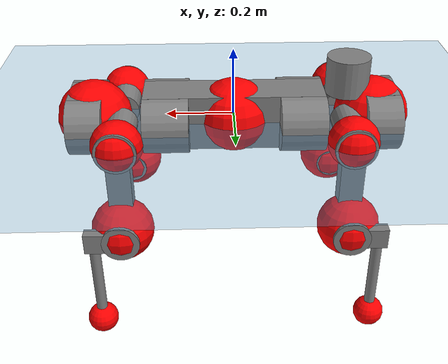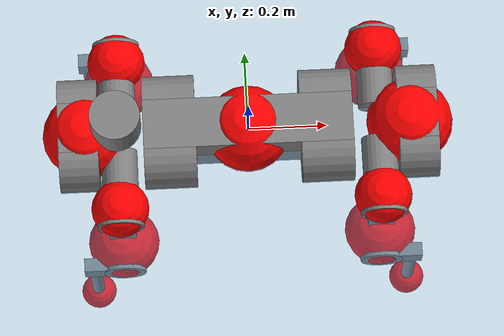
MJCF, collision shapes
<mujoco model="anymal_c">
  <compiler angle="radian" assetdir="assets" balanceinertia="true" inertiafromgeom="false"/>

  <option timestep="0.005" density="1.2" viscosity="2e-05"/>

  <size nkey="1"/>

  <visual>
    <quality shadowsize="8192"/>
    <map shadowclip="0.5"/>
  </visual>

  <default>
    <default class="/">
      <material specular="0" shininess="0.25"/>
      <geom contype="0" conaffinity="0" group="1" solref="-1000 -80"/>
      <site size="0.01 0.005 0.005" group="5"/>
      <general forcelimited="true" forcerange="-80 80" biastype="affine" gainprm="80" biasprm="0 -80 -2"/>
      <default class="anymal_c">
        <joint armature="0.01" damping="0.01" frictionloss="0.1"/>
        <default class="visual">
          <geom type="mesh" group="2"/>
          <default class="visual_zflip"/>
        </default>
        <default class="collision">
          <geom type="cylinder" group="3"/>
          <default class="foot">
            <geom size="0.03 0 0" type="sphere" condim="6" priority="1" friction="0.8 0.02 0.01" solimp="0.015 1 0.03"/>
          </default>
        </default>
      </default>
      <default class="reward_collision_sphere">
        <geom group="5" rgba="1 0 0 1"/>
      </default>
    </default>
  </default>

  <asset>
    <texture type="skybox" colorspace="auto" name="//unnamed_texture_0" builtin="gradient" rgb1="0.95 0.95 0.95" rgb2="0.95 0.95 0.95" width="100" height="600"/>
    <texture type="2d" colorspace="auto" name="texplane" builtin="checker" rgb1="0.345 0.575 0.748" rgb2="0.345 0.575 0.748" markrgb="1 1 1" width="512" height="512"/>
    <texture type="2d" colorspace="linear" name="base" file="base.png"/>
    <texture type="2d" colorspace="linear" name="top_shell" file="top_shell.png"/>
    <texture type="2d" colorspace="linear" name="bottom_shell" file="bottom_shell.png"/>
    <texture type="2d" colorspace="linear" name="remote" file="remote.png"/>
    <texture type="2d" colorspace="linear" name="hatch" file="hatch.png"/>
    <texture type="2d" colorspace="linear" name="handle" file="handle.png"/>
    <texture type="2d" colorspace="linear" name="face" file="face.png"/>
    <texture type="2d" colorspace="linear" name="battery" file="battery.png"/>
    <texture type="2d" colorspace="linear" name="lidar_cage" file="lidar_cage.png"/>
    <texture type="2d" colorspace="linear" name="depth_camera" file="depth_camera.png"/>
    <texture type="2d" colorspace="linear" name="wide_angle_camera" file="wide_angle_camera.png"/>
    <texture type="2d" colorspace="linear" name="lidar" file="lidar.png"/>
    <texture type="2d" colorspace="linear" name="drive" file="drive.png"/>
    <texture type="2d" colorspace="linear" name="hip_l" file="hip_l.png"/>
    <texture type="2d" colorspace="linear" name="shank_l" file="shank_l.png"/>
    <texture type="2d" colorspace="linear" name="foot" file="foot.png"/>
    <texture type="2d" colorspace="linear" name="thigh" file="thigh.png"/>
    <texture type="2d" colorspace="linear" name="shank_r" file="shank_r.png"/>
    <texture type="2d" colorspace="linear" name="hip_r" file="hip_r.png"/>
    <material name="MatPlane" class="/" texture="texplane" texuniform="true" texrepeat="2 2" specular="0.9" shininess="0.5"/>
    <material name="black_plastic" class="/" rgba="0.007 0.007 0.007 1"/>
    <material name="green" class="/" rgba="0.052 0.178 0.033 1"/>
    <material name="red" class="/" rgba="0.178 0.006 0.005 1"/>
    <material name="yellow" class="/" rgba="0.178 0.119 0.006 1"/>
    <material name="lwl" class="/" rgba="0.8 0.8 0.8 1"/>
    <material name="base" class="/" texture="base"/>
    <material name="top_shell" class="/" texture="top_shell"/>
    <material name="bottom_shell" class="/" texture="bottom_shell"/>
    <material name="hip_l" class="/" texture="hip_l"/>
    <material name="thigh" class="/" texture="thigh"/>
    <material name="shank_l" class="/" texture="shank_l"/>
    <material name="foot" class="/" texture="foot"/>
    <material name="hip_r" class="/" texture="hip_r"/>
    <material name="shank" class="/" texture="shank_r"/>
    <material name="hatch" class="/" texture="hatch"/>
    <material name="remote" class="/" texture="remote"/>
    <material name="handle" class="/" texture="handle"/>
    <material name="face" class="/" texture="face"/>
    <material name="depth_camera" class="/" texture="depth_camera"/>
    <material name="wide_angle_camera" class="/" texture="wide_angle_camera"/>
    <material name="battery" class="/" texture="battery"/>
    <material name="lidar_cage" class="/" texture="lidar_cage"/>
    <material name="lidar" class="/" texture="lidar"/>
    <material name="drive" class="/" texture="drive"/>
    <mesh name="base_0" class="/" file="base_0.obj"/>
    <mesh name="base_1" class="/" file="base_1.obj"/>
    <mesh name="base_2" class="/" file="base_2.obj"/>
    <mesh name="base_3" class="/" file="base_3.obj"/>
    <mesh name="base_4" class="/" file="base_4.obj"/>
    <mesh name="base_5" class="/" file="base_5.obj"/>
    <mesh name="top_shell" class="/" file="top_shell.obj"/>
    <mesh name="bottom_shell" class="/" file="bottom_shell.obj"/>
    <mesh name="remote" class="/" file="remote.obj"/>
    <mesh name="handle" class="/" file="handle.obj"/>
    <mesh name="face" class="/" file="face.obj"/>
    <mesh name="wide_angle_camera" class="/" file="wide_angle_camera.obj"/>
    <mesh name="depth_camera" class="/" file="depth_camera.obj"/>
    <mesh name="battery" class="/" file="battery.obj"/>
    <mesh name="lidar_cage" class="/" file="lidar_cage.obj"/>
    <mesh name="lidar" class="/" file="lidar.obj"/>
    <mesh name="drive" class="/" file="drive.obj"/>
    <mesh name="hip_l" class="/" file="hip_l.obj"/>
    <mesh name="thigh" class="/" file="thigh.obj"/>
    <mesh name="shank_l" class="/" file="shank_l.obj"/>
    <mesh name="foot" class="/" file="foot.obj"/>
    <mesh name="hip_r" class="/" file="hip_r.obj"/>
    <mesh name="hatch" class="/" file="hatch.obj"/>
    <mesh name="shank_r" class="/" file="shank_r.obj"/>
  </asset>

  <worldbody>
    <geom name="floor" class="/" size="100 100 0.125" type="plane" group="0" material="MatPlane"/>
    <light name="toplight_shadow" class="/" pos="0 0 5" dir="0.0990148 0.0990148 -0.990148" type="directional" ambient="0.04 0.04 0.04" diffuse="0.55 0.55 0.55" specular="0.12 0.12 0.12"/>
    <light name="toplight_fill" class="/" pos="0 0 5" dir="0.0990148 0.0990148 -0.990148" type="directional" castshadow="false" ambient="0.04 0.04 0.04" diffuse="0.3 0.3 0.3" specular="0.08 0.08 0.08"/>
    <body name="trunk" childclass="anymal_c" pos="-0.000858432 0.0014628 -0.00225119" quat="1 -0.000385169 0.000608616 0.00018417">
      <inertial pos="-6.20507e-05 0.00186652 0.0461093" quat="0.499547 0.500631 0.50035 0.499472" mass="14.9422" diaginertia="0.404167 0.369014 0.143715"/>
      <joint name="//unnamed_joint_0" type="free" armature="0" damping="0" frictionloss="0"/>
      <geom name="//unnamed_geom_1" class="visual" material="green" mesh="base_0"/>
      <geom name="//unnamed_geom_2" class="visual" material="yellow" mesh="base_1"/>
      <geom name="//unnamed_geom_3" class="visual" material="red" mesh="base_2"/>
      <geom name="//unnamed_geom_4" class="visual" material="black_plastic" mesh="base_3"/>
      <geom name="//unnamed_geom_5" class="visual" material="lwl" mesh="base_4"/>
      <geom name="//unnamed_geom_6" class="visual" material="base" mesh="base_5"/>
      <geom name="trunk_1" class="collision" size="0.264931 0.0639488 0.0822199" type="box"/>
      <geom name="trunk_2" class="collision" size="0.0822199 0.0662327" pos="0.198798 0.0631702 0" quat="0.707107 0 0.707107 0"/>
      <geom name="trunk_3" class="collision" size="0.0822199 0.0662327" pos="-0.198798 0.0631702 0" quat="0.707107 0 0.707107 0"/>
      <geom name="trunk_4" class="collision" size="0.0822199 0.0662327" pos="0.198798 -0.0631702 0" quat="0.707107 0 0.707107 0"/>
      <geom name="trunk_5" class="collision" size="0.0822199 0.0662327" pos="-0.198798 -0.0631702 0" quat="0.707107 0 0.707107 0"/>
      <geom name="//unnamed_geom_12" class="visual" material="top_shell" mesh="top_shell"/>
      <geom name="//unnamed_geom_13" class="visual" material="bottom_shell" mesh="bottom_shell"/>
      <geom name="//unnamed_geom_14" class="visual" material="remote" mesh="remote"/>
      <geom name="//unnamed_geom_15" class="visual" material="handle" mesh="handle"/>
      <geom name="//unnamed_geom_16" class="visual" pos="0.378858 0 0" quat="1 0 0 0" material="face" mesh="face"/>
      <geom name="trunk_6" class="collision" size="0.0502455 0.0639488 0.0822199" pos="0.429129 0 0" type="box"/>
      <geom name="//unnamed_geom_18" class="collision" size="0.0822199 0.0502455" pos="0.429129 0.0631702 0" quat="0.707107 0 0.707107 0"/>
      <geom name="//unnamed_geom_19" class="collision" size="0.0822199 0.0502455" pos="0.429129 -0.0631702 0" quat="0.707107 0 0.707107 0"/>
      <geom name="//unnamed_geom_20" class="visual" pos="0.421955 0 -0.0270647" quat="0.965926 0 0.258819 0" material="depth_camera" mesh="depth_camera"/>
      <geom name="//unnamed_geom_21" class="visual" pos="0.468889 0 0.0138356" material="wide_angle_camera" mesh="wide_angle_camera"/>
      <geom name="//unnamed_geom_22" class="visual_zflip" pos="-0.378858 0 0" quat="0 0 0 1" material="face" mesh="face"/>
      <geom name="trunk_7" class="collision" size="0.0502455 0.0639488 0.0822199" pos="-0.429129 0 0" quat="0 0 0 1" type="box"/>
      <geom name="//unnamed_geom_24" class="collision" size="0.0822199 0.0502455" pos="-0.429129 -0.0631702 0" quat="0 -0.707107 0 0.707107"/>
      <geom name="//unnamed_geom_25" class="collision" size="0.0822199 0.0502455" pos="-0.429129 0.0631702 0" quat="0 -0.707107 0 0.707107"/>
      <geom name="//unnamed_geom_26" class="visual" pos="-0.421955 0 -0.0270647" quat="0 -0.258819 0 0.965926" material="depth_camera" mesh="depth_camera"/>
      <geom name="//unnamed_geom_27" class="visual_zflip" pos="-0.468889 0 0.0138356" quat="0 0 0 1" material="wide_angle_camera" mesh="wide_angle_camera"/>
      <geom name="//unnamed_geom_28" class="visual" material="battery" mesh="battery"/>
      <geom name="//unnamed_geom_29" class="visual" pos="0 0.0688484 0.026771" quat="0.683013 -0.183013 0.183013 0.683013" material="depth_camera" mesh="depth_camera"/>
      <geom name="//unnamed_geom_30" class="visual" pos="0 -0.0688484 0.026771" quat="0.683013 0.183013 0.183013 -0.683013" material="depth_camera" mesh="depth_camera"/>
      <geom name="//unnamed_geom_31" class="visual" pos="-0.332701 0 0.0679301" quat="1 0 0 0" material="lidar_cage" mesh="lidar_cage"/>
      <geom name="trunk_8" class="collision" size="0.0639488 0.0548133" pos="-0.332701 0 0.123383"/>
      <geom name="//unnamed_geom_33" class="visual" pos="-0.332701 -4.55007e-06 0.131424" quat="0.707107 0 0 -0.707107" material="lidar" mesh="lidar"/>
      <geom name="//unnamed_geom_34" class="visual" pos="0.274113 0.0938606 -3.75831e-10" quat="0.258819 0.965926 0 0" material="drive" mesh="drive"/>
      <geom name="//unnamed_geom_35" class="visual" pos="0.274113 -0.0938606 3.75831e-10" quat="0.258819 -0.965926 0 0" material="drive" mesh="drive"/>
      <geom name="//unnamed_geom_36" class="visual" pos="-0.274113 0.0938606 3.75831e-10" quat="0 0 0.965926 -0.258819" material="drive" mesh="drive"/>
      <geom name="//unnamed_geom_37" class="visual" pos="-0.274113 -0.0938606 -3.75831e-10" quat="0 0 -0.965926 -0.258819" material="drive" mesh="drive"/>
      <geom name="//unnamed_geom_38" class="visual" pos="0.106026 0 0.067468" quat="1 0 0 0" material="hatch" mesh="hatch"/>
      <geom name="//unnamed_geom_39" class="reward_collision_sphere" size="0.109627"/>
      <geom name="//unnamed_geom_40" class="reward_collision_sphere" size="0.109627" pos="0.411306 0 0"/>
      <geom name="//unnamed_geom_41" class="reward_collision_sphere" size="0.109627" pos="-0.411306 0 0"/>
      <site name="imu" pos="0.237361 0.0237891 0.0293382" size="0.00913554"/>
      <camera name="track" pos="0 -1.80486 0" quat="0.707107 0.707107 0 0" mode="trackcom"/>
      <camera name="ego_camera" pos="0.411306 0 -0.0369687" quat="-0.5 -0.5 0.5 0.5"/>
      <body name="LF_HIP" pos="0.273926 0.0938144 0.000940998" quat="0.258218 0.966086 -0.00124704 -1.93201e-05">
        <inertial pos="0.0496747 -0.0132737 -0.00999665" quat="-0.126548 0.711926 -0.13635 0.677167" mass="2.07934" diaginertia="0.00364822 0.00286456 0.00223007"/>
        <joint name="LF_HAA" pos="0 0 0" axis="0.999937 0.00464154 -0.0102028" range="-0.749634 0.497507" armature="0.00934701" damping="0.0123121" frictionloss="0.083915"/>
        <geom name="//unnamed_geom_42" class="visual" pos="0 -2.21085e-05 3.6313e-06" quat="0.258819 -0.965926 0 0" material="hip_l" mesh="hip_l"/>
        <geom name="//unnamed_geom_43" class="visual" pos="0.0547494 -0.0661958 -0.0383793" quat="0.183013 -0.683013 0.683013 0.183013" material="drive" mesh="drive"/>
        <geom name="//unnamed_geom_44" class="collision" size="0.0456777 0.0639488" pos="0.0547494 -0.0107929 -0.00638173" quat="-0.353553 -0.612372 0.612372 -0.353553"/>
        <body name="LF_THIGH" pos="0.0548012 -0.0664445 -0.0433947" quat="0.183756 -0.68279 0.683042 0.182988">
          <inertial pos="0.0291192 0.00166681 -0.223769" quat="0.993366 -0.0172123 -0.0755502 0.0849723" mass="2.27609" diaginertia="0.0196592 0.017367 0.00288252"/>
          <joint name="LF_HFE" pos="0 0 0" axis="0.999974 0.000664662 0.0072342" stiffness="0.0114331" range="-3.13392 3.08543" armature="0.00822017" damping="0.0181199" frictionloss="0.0922749"/>
          <geom name="//unnamed_geom_45" class="visual" pos="0.000230427 3.63098e-07 0" quat="0.707107 0 0 -0.707107" material="thigh" mesh="thigh"/>
          <geom name="//unnamed_geom_46" class="collision" size="0.059381 0.0365422" pos="0.0365605 0 0" quat="0.5 0.5 -0.5 -0.5"/>
          <geom name="//unnamed_geom_47" class="collision" size="0.0342583 0.0274066 0.129098" pos="0.0274204 0 -0.130605" quat="0.707107 0 0 -0.707107" type="box"/>
          <geom name="//unnamed_geom_48" class="visual" pos="0.0916755 0 -0.263402" quat="1 0 0 0" material="drive" mesh="drive"/>
          <geom name="//unnamed_geom_49" class="collision" size="0.0456777 0.0639488" pos="0.0276946 0 -0.263402" quat="0.707107 0 0.707107 0"/>
          <geom name="//unnamed_geom_50" class="reward_collision_sphere" size="0.0730844" pos="0.0228503 0 0"/>
          <body name="LF_SHANK" pos="0.0882614 -0.00238712 -0.262295" quat="1 -4.83106e-05 1.76177e-05 -9.11284e-05">
            <inertial pos="0.00245422 -0.057203 -0.0734447" quat="0.992914 -0.116077 -0.0014824 -0.0254119" mass="0.4351" diaginertia="0.00649571 0.00530659 0.000747851"/>
            <joint name="LF_KFE" pos="0 0 0" axis="0.999982 0.0015059 0.00577421" stiffness="0.0114085" range="-3.1155 3.15798" armature="0.00916243" damping="0.00954311" frictionloss="0.0859707"/>
            <geom name="//unnamed_geom_51" class="visual" pos="7.51371e-05 0.000400635 0" quat="0.707107 0 0 -0.707107" material="shank_l" mesh="shank_l"/>
            <geom name="LF_kfe_act" class="collision" size="0.0548133 0.0182711" pos="0.0182803 0 0" quat="0.5 0.5 -0.5 -0.5"/>
            <geom name="//unnamed_geom_53" class="collision" size="0.0525285 0.0308325 0.0173575" pos="0.0182803 -0.0518889 0" quat="0.5 0.5 -0.5 -0.5" type="box"/>
            <geom name="//unnamed_geom_54" class="visual" pos="0.0119279 -0.0792397 -0.312358" quat="0.382683 0 0 -0.92388" material="foot" mesh="foot"/>
            <geom name="LF_calf" class="collision" size="0.0159872 0.129041" pos="0.0119279 -0.0793689 -0.156179" quat="0.707107 0 0 -0.707107"/>
            <geom name="LF_foot" class="foot" size="0.0295451" pos="0.0119279 -0.0793689 -0.291563" quat="0.707107 0 0 -0.707107"/>
            <geom name="//unnamed_geom_57" class="reward_collision_sphere" size="0.0913554" pos="-0.0457007 0 0"/>
            <geom name="//unnamed_geom_58" class="reward_collision_sphere" size="0.0456777" pos="0.0119279 -0.0793689 -0.291563"/>
            <site name="LF_foot" class="foot" pos="0.0119279 -0.0793689 -0.291563" quat="0.707107 0 0 -0.707107" size="0.00913554"/>
          </body>
        </body>
      </body>
      <body name="RF_HIP" pos="0.276859 -0.0917078 -0.00159549" quat="0.258715 -0.965954 -7.52371e-05 6.33259e-05">
        <inertial pos="0.0494479 0.0129159 -0.00857303" quat="0.133569 0.675345 0.122678 0.714855" mass="2.06761" diaginertia="0.00354365 0.0029629 0.0022154"/>
        <joint name="RF_HAA" pos="0 0 0" axis="0.999992 0.00364583 -0.00144938" range="-0.478408 0.7205" armature="0.00897199" damping="0.00701162" frictionloss="0.10362"/>
        <geom name="//unnamed_geom_59" class="visual" pos="0 2.21083e-05 3.63129e-06" quat="0.258819 0.965926 0 0" material="hip_r" mesh="hip_r"/>
        <geom name="//unnamed_geom_60" class="visual" pos="0.0547494 0.0661958 -0.0383793" quat="0.183013 0.683013 0.683013 -0.183013" material="drive" mesh="drive"/>
        <geom name="//unnamed_geom_61" class="collision" size="0.0456777 0.0639488" pos="0.0547494 0.0107929 -0.00638173" quat="-0.353553 0.612372 0.612372 0.353553"/>
        <body name="RF_THIGH" pos="0.0573677 0.0642232 -0.0392428" quat="0.182979 0.683647 0.682374 -0.183059">
          <inertial pos="0.0278789 -0.00016558 -0.224825" quat="0.991388 0.00667362 -0.093022 0.0919369" mass="2.36092" diaginertia="0.0183271 0.0174124 0.00274613"/>
          <joint name="RF_HFE" pos="0 0 0" axis="0.999929 -0.0110081 0.00462416" stiffness="0.00729247" range="-3.10304 3.14075" armature="0.00913023" damping="0.0120969" frictionloss="0.101872"/>
          <geom name="//unnamed_geom_62" class="visual" pos="0.000230427 3.63098e-07 0" quat="0.707107 0 0 -0.707107" material="thigh" mesh="thigh"/>
          <geom name="//unnamed_geom_63" class="collision" size="0.059381 0.0365422" pos="0.0365605 0 0" quat="0.5 0.5 0.5 0.5"/>
          <geom name="//unnamed_geom_64" class="collision" size="0.0342583 0.0274066 0.129098" pos="0.0274204 0 -0.130605" quat="0.707107 0 0 0.707107" type="box"/>
          <geom name="//unnamed_geom_65" class="visual" pos="0.0916755 0 -0.263402" quat="1 0 0 0" material="drive" mesh="drive"/>
          <geom name="//unnamed_geom_66" class="collision" size="0.0456777 0.0639488" pos="0.0276946 0 -0.263402" quat="0.707107 0 0.707107 0"/>
          <geom name="//unnamed_geom_67" class="reward_collision_sphere" size="0.0730844" pos="0.0228503 0 0"/>
          <body name="RF_SHANK" pos="0.0911699 0.000526977 -0.261777" quat="1 -9.55005e-05 6.39628e-05 5.433e-05">
            <inertial pos="0.00751012 0.0546374 -0.0780546" quat="0.991805 0.124383 -0.00591662 0.0285616" mass="0.466879" diaginertia="0.00699199 0.00555253 0.000801499"/>
            <joint name="RF_KFE" pos="0 0 0" axis="0.99999 0.00403326 -0.00192478" range="-3.13386 3.09538" armature="0.00934454" damping="0.00962319" frictionloss="0.0913987"/>
            <geom name="//unnamed_geom_68" class="visual" pos="7.51367e-05 -0.000400634 0" quat="0.707107 0 0 0.707107" material="shank" mesh="shank_r"/>
            <geom name="RF_kfe_act" class="collision" size="0.0548133 0.0182711" pos="0.0182803 0 0" quat="0.5 0.5 0.5 0.5"/>
            <geom name="//unnamed_geom_70" class="collision" size="0.0525285 0.0308325 0.0173575" pos="0.0182803 0.0518889 0" quat="0.5 0.5 0.5 0.5" type="box"/>
            <geom name="//unnamed_geom_71" class="visual" pos="0.0119279 0.0792397 -0.312358" quat="0.382683 0 0 0.92388" material="foot" mesh="foot"/>
            <geom name="RF_calf" class="collision" size="0.0159872 0.129041" pos="0.0119279 0.0793689 -0.156179" quat="0.707107 0 0 0.707107"/>
            <geom name="RF_foot" class="foot" size="0.029713" pos="0.0119279 0.0793689 -0.291563" quat="0.707107 0 0 0.707107"/>
            <geom name="//unnamed_geom_74" class="reward_collision_sphere" size="0.0913554" pos="-0.0457007 0 0"/>
            <geom name="//unnamed_geom_75" class="reward_collision_sphere" size="0.0456777" pos="0.0119279 0.0793689 -0.291563"/>
            <site name="RF_foot" class="foot" pos="0.0119279 0.0793689 -0.291563" quat="0.707107 0 0 0.707107" size="0.00913554"/>
          </body>
        </body>
      </body>
      <body name="LH_HIP" pos="-0.274754 0.0919892 0.00173735" quat="0.000622146 0.000296746 0.966032 -0.25842">
        <inertial pos="0.0510166 0.0130218 -0.0063165" quat="0.141374 0.676954 0.128906 0.710725" mass="2.05286" diaginertia="0.00365023 0.00285895 0.00219677"/>
        <joint name="LH_HAA" pos="0 0 0" axis="0.999999 0.000721243 -0.00106475" stiffness="0.00200175" range="-0.548718 0.694884" armature="0.00925205" damping="0" frictionloss="0.0855025"/>
        <geom name="//unnamed_geom_76" class="visual" pos="0 2.21083e-05 3.63129e-06" quat="-0.258819 -0.965926 0 0" material="hip_r" mesh="hip_r"/>
        <geom name="//unnamed_geom_77" class="visual" pos="0.0547494 0.0661958 -0.0383793" quat="0.183013 0.683013 0.683013 -0.183013" material="drive" mesh="drive"/>
        <geom name="//unnamed_geom_78" class="collision" size="0.0456777 0.0639488" pos="0.0547494 0.0107929 -0.00638173" quat="-0.353553 0.612372 0.612372 0.353553"/>
        <body name="LH_THIGH" pos="0.0533249 0.0642208 -0.0368615" quat="0.182882 0.683006 0.683005 -0.1832">
          <inertial pos="0.029222 0.00138121 -0.223826" quat="0.992512 -0.00159974 -0.0790724 0.0930905" mass="2.35653" diaginertia="0.0203951 0.0182964 0.00296481"/>
          <joint name="LH_HFE" pos="0 0 0" axis="0.99999 0.0033506 -0.00310004" range="-3.11539 3.09501" armature="0.0103555" damping="0.0206611" frictionloss="0.0955984"/>
          <geom name="//unnamed_geom_79" class="visual" pos="0.000230427 3.63098e-07 0" quat="0.707107 0 0 -0.707107" material="thigh" mesh="thigh"/>
          <geom name="//unnamed_geom_80" class="collision" size="0.059381 0.0365422" pos="0.0365605 0 0" quat="0.5 0.5 -0.5 -0.5"/>
          <geom name="//unnamed_geom_81" class="collision" size="0.0342583 0.0274066 0.129098" pos="0.0274204 0 -0.130605" quat="0.707107 0 0 -0.707107" type="box"/>
          <geom name="//unnamed_geom_82" class="visual" pos="0.0916755 0 -0.263402" quat="1 0 0 0" material="drive" mesh="drive"/>
          <geom name="//unnamed_geom_83" class="collision" size="0.0456777 0.0639488" pos="0.0276946 0 -0.263402" quat="0.707107 0 0.707107 0"/>
          <geom name="//unnamed_geom_84" class="reward_collision_sphere" size="0.0730844" pos="0.0228503 0 0"/>
          <body name="LH_SHANK" pos="0.0903098 0.00212672 -0.264085" quat="1 -0.000199919 0.000232577 -8.67816e-07">
            <inertial pos="0.00693767 0.0534889 -0.0733469" quat="0.992934 0.115904 -0.00105431 0.0254429" mass="0.443195" diaginertia="0.00645767 0.00568117 0.000725554"/>
            <joint name="LH_KFE" pos="0 0 0" axis="0.999933 -0.00550145 0.0102103" stiffness="0.0158588" range="-3.0916 3.1443" armature="0.00961914" damping="0.0170689" frictionloss="0.0996748"/>
            <geom name="//unnamed_geom_85" class="visual" pos="7.51367e-05 -0.000400634 0" quat="-0.707107 0 0 -0.707107" material="shank" mesh="shank_r"/>
            <geom name="LH_kfe_act" class="collision" size="0.0548133 0.0182711" pos="0.0182803 0 0" quat="0.5 0.5 -0.5 -0.5"/>
            <geom name="//unnamed_geom_87" class="collision" size="0.0525285 0.0308325 0.0173575" pos="0.0182803 0.0518889 0" quat="0.5 0.5 -0.5 -0.5" type="box"/>
            <geom name="//unnamed_geom_88" class="visual" pos="0.0119279 0.0792397 -0.312358" quat="-0.382683 0 0 -0.92388" material="foot" mesh="foot"/>
            <geom name="LH_calf" class="collision" size="0.0159872 0.129041" pos="0.0119279 0.0793689 -0.156179" quat="0.707107 0 0 -0.707107"/>
            <geom name="LH_foot" class="foot" size="0.0309031" pos="0.0119279 0.0793689 -0.291563" quat="0.707107 0 0 -0.707107"/>
            <geom name="//unnamed_geom_91" class="reward_collision_sphere" size="0.0913554" pos="-0.0457007 0 0"/>
            <geom name="//unnamed_geom_92" class="reward_collision_sphere" size="0.0456777" pos="0.0119279 0.0793689 -0.291563"/>
            <site name="LH_foot" class="foot" pos="0.0119279 0.0793689 -0.291563" quat="0.707107 0 0 -0.707107" size="0.00913554"/>
          </body>
        </body>
      </body>
      <body name="RH_HIP" pos="-0.273886 -0.0972753 5.53802e-06" quat="0.000955634 -0.00041945 -0.965815 -0.259229">
        <inertial pos="0.0509235 -0.0149583 -0.00867355" quat="-0.128596 0.709712 -0.136155 0.679142" mass="2.26078" diaginertia="0.003775 0.00296486 0.00230495"/>
        <joint name="RH_HAA" pos="0 0 0" axis="0.999937 -0.00104955 0.0112165" stiffness="0.00017615" range="-0.671761 0.493172" armature="0.00823051" damping="0.0113773" frictionloss="0.103627"/>
        <geom name="//unnamed_geom_93" class="visual" pos="0 -2.21085e-05 3.6313e-06" quat="-0.258819 0.965926 0 0" material="hip_l" mesh="hip_l"/>
        <geom name="//unnamed_geom_94" class="visual" pos="0.0547494 -0.0661958 -0.0383793" quat="-0.183013 0.683013 -0.683013 -0.183013" material="drive" mesh="drive"/>
        <geom name="//unnamed_geom_95" class="collision" size="0.0456777 0.0639488" pos="0.0547494 -0.0107929 -0.00638173" quat="0.353553 0.612372 -0.612372 0.353553"/>
        <body name="RH_THIGH" pos="0.0568911 -0.0641968 -0.0403961" quat="-0.182793 0.683316 -0.682933 -0.182398">
          <inertial pos="0.0267362 0.000821836 -0.226731" quat="0.993151 -0.00323675 -0.0802739 0.0848302" mass="2.35295" diaginertia="0.0199481 0.0177926 0.00282656"/>
          <joint name="RH_HFE" pos="0 0 0" axis="0.999893 0.0120142 -0.00831363" range="-3.1028 3.11674" armature="0.00885799" damping="0.00637907" frictionloss="0.092751"/>
          <geom name="//unnamed_geom_96" class="visual" pos="0.000230427 3.63098e-07 0" quat="0.707107 0 0 -0.707107" material="thigh" mesh="thigh"/>
          <geom name="//unnamed_geom_97" class="collision" size="0.059381 0.0365422" pos="0.0365605 0 0" quat="0.5 0.5 0.5 0.5"/>
          <geom name="//unnamed_geom_98" class="collision" size="0.0342583 0.0274066 0.129098" pos="0.0274204 0 -0.130605" quat="0.707107 0 0 0.707107" type="box"/>
          <geom name="//unnamed_geom_99" class="visual" pos="0.0916755 0 -0.263402" quat="1 0 0 0" material="drive" mesh="drive"/>
          <geom name="//unnamed_geom_100" class="collision" size="0.0456777 0.0639488" pos="0.0276946 0 -0.263402" quat="0.707107 0 0.707107 0"/>
          <geom name="//unnamed_geom_101" class="reward_collision_sphere" size="0.0730844" pos="0.0228503 0 0"/>
          <body name="RH_SHANK" pos="0.0894441 -8.69995e-05 -0.263247" quat="1 0.000758337 0.000527866 -0.000207244">
            <inertial pos="0.00781885 -0.0548656 -0.0743995" quat="0.992497 -0.120753 -0.000560377 -0.0191838" mass="0.439015" diaginertia="0.00620653 0.00541205 0.000743334"/>
            <joint name="RH_KFE" pos="0 0 0" axis="0.999971 -0.00554265 -0.00526371" range="-3.12681 3.17366" armature="0.00813455" damping="0.0208908" frictionloss="0.0955776"/>
            <geom name="//unnamed_geom_102" class="visual" pos="7.51371e-05 0.000400635 0" quat="0.707107 0 0 -0.707107" material="shank_l" mesh="shank_l"/>
            <geom name="RH_kfe_act" class="collision" size="0.0548133 0.0182711" pos="0.0182803 0 0" quat="0.5 0.5 0.5 0.5"/>
            <geom name="//unnamed_geom_104" class="collision" size="0.0525285 0.0308325 0.0173575" pos="0.0182803 -0.0518889 0" quat="0.5 0.5 0.5 0.5" type="box"/>
            <geom name="//unnamed_geom_105" class="visual" pos="0.0119279 -0.0792397 -0.312358" quat="0.382683 0 0 -0.92388" material="foot" mesh="foot"/>
            <geom name="RH_calf" class="collision" size="0.0159872 0.129041" pos="0.0119279 -0.0793689 -0.156179" quat="0.707107 0 0 0.707107"/>
            <geom name="RH_foot" class="foot" size="0.0207801" pos="0.0119279 -0.0793689 -0.291563" quat="0.707107 0 0 0.707107"/>
            <geom name="//unnamed_geom_108" class="reward_collision_sphere" size="0.0913554" pos="-0.0457007 0 0"/>
            <geom name="//unnamed_geom_109" class="reward_collision_sphere" size="0.0456777" pos="0.0119279 -0.0793689 -0.291563"/>
            <site name="RH_foot" class="foot" pos="0.0119279 -0.0793689 -0.291563" quat="0.707107 0 0 0.707107" size="0.00913554"/>
          </body>
        </body>
      </body>
    </body>
  </worldbody>

  <contact>
    <pair class="/" geom1="floor" geom2="LF_foot" name="//unnamed_contact_0"/>
    <pair class="/" geom1="floor" geom2="RF_foot" name="//unnamed_contact_1"/>
    <pair class="/" geom1="floor" geom2="LH_foot" name="//unnamed_contact_2"/>
    <pair class="/" geom1="floor" geom2="RH_foot" name="//unnamed_contact_3"/>
  </contact>

  <actuator>
    <general name="LF_HAA" class="/" joint="LF_HAA" forcerange="-81.3775 81.3775" gainprm="66.9111" biasprm="0 -66.9111 -1.75994"/>
    <general name="LF_HFE" class="/" joint="LF_HFE" forcerange="-71.3413 71.3413" gainprm="66.9111" biasprm="0 -66.9111 -1.75994"/>
    <general name="LF_KFE" class="/" joint="LF_KFE" forcerange="-76.1277 76.1277" gainprm="66.9111" biasprm="0 -66.9111 -1.75994"/>
    <general name="RF_HAA" class="/" joint="RF_HAA" forcerange="-76.9306 76.9306" gainprm="66.9111" biasprm="0 -66.9111 -1.75994"/>
    <general name="RF_HFE" class="/" joint="RF_HFE" forcerange="-78.6708 78.6708" gainprm="66.9111" biasprm="0 -66.9111 -1.75994"/>
    <general name="RF_KFE" class="/" joint="RF_KFE" forcerange="-63.0853 63.0853" gainprm="66.9111" biasprm="0 -66.9111 -1.75994"/>
    <general name="LH_HAA" class="/" joint="LH_HAA" forcerange="-68.7166 68.7166" gainprm="66.9111" biasprm="0 -66.9111 -1.75994"/>
    <general name="LH_HFE" class="/" joint="LH_HFE" forcerange="-80.0023 80.0023" gainprm="66.9111" biasprm="0 -66.9111 -1.75994"/>
    <general name="LH_KFE" class="/" joint="LH_KFE" forcerange="-76.198 76.198" gainprm="66.9111" biasprm="0 -66.9111 -1.75994"/>
    <general name="RH_HAA" class="/" joint="RH_HAA" forcerange="-73.5445 73.5445" gainprm="66.9111" biasprm="0 -66.9111 -1.75994"/>
    <general name="RH_HFE" class="/" joint="RH_HFE" forcerange="-81.1803 81.1803" gainprm="66.9111" biasprm="0 -66.9111 -1.75994"/>
    <general name="RH_KFE" class="/" joint="RH_KFE" forcerange="-73.4126 73.4126" gainprm="66.9111" biasprm="0 -66.9111 -1.75994"/>
  </actuator>

  <sensor>
    <gyro site="imu" name="imu_angular_velocity"/>
    <velocimeter site="imu" name="imu_linear_velocity"/>
    <framelinvel objtype="site" objname="LF_foot" name="LF_foot_global_linear_velocity"/>
    <framelinvel objtype="site" objname="RF_foot" name="RF_foot_global_linear_velocity"/>
    <framelinvel objtype="site" objname="LH_foot" name="LH_foot_global_linear_velocity"/>
    <framelinvel objtype="site" objname="RH_foot" name="RH_foot_global_linear_velocity"/>
  </sensor>

  <keyframe>
    <key name="home" qpos="0 0 0.55 1 0 0 0 0 0.4 -0.8 0 -0.4 0.8 0 -0.4 0.8 0 0.4 -0.8"/>
  </keyframe>
</mujoco>
